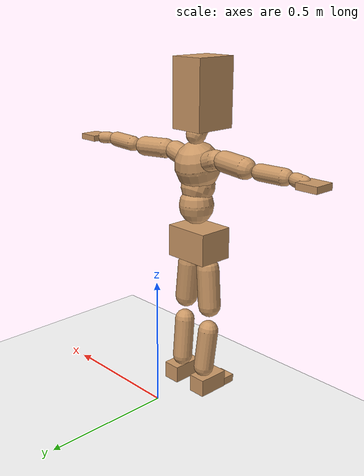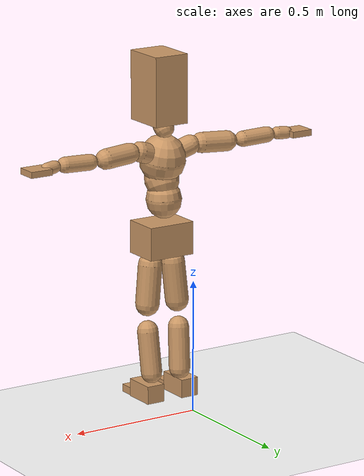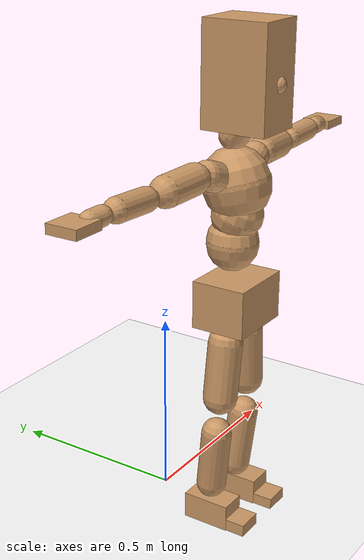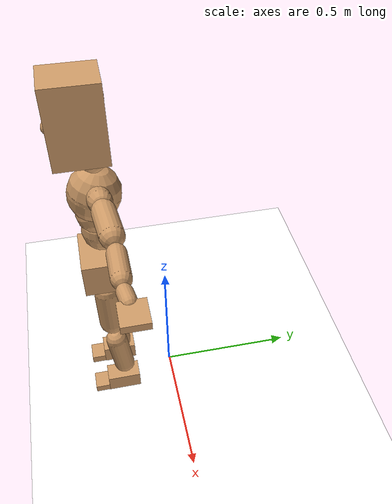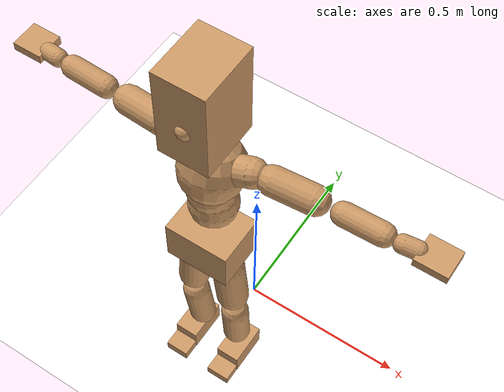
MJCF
<mujoco model="humanoid">
  <option integrator="implicitfast" />

  <visual>
    <global offwidth="1280" offheight="960" />
    <headlight active="1" ambient="0.34 0.34 0.34" diffuse="0.5 0.5 0.5" />
  </visual>

  <default>
    <joint damping="2" stiffness="2" armature="0.01" limited="true" solimplimit="0 .99 .01" />
    <geom condim="1" friction="0.7 0.005 0.0001" solimp=".99 .99 .003" solref="0.015 1" margin="0.001" rgba="0.8 0.6 .4 1" />
    <default class="smplcontact">
      <geom condim="3" friction="1. 0.005 0.0001" solref="0.015 1" solimp="0.98 0.98 0.001" priority="1" />
    </default>
    <default class="stiff_medium">
      <joint stiffness="10" />
    </default>
    <default class="stiff_medium_higher">
      <joint stiffness="50" />
    </default>
    <default class="stiff_high">
      <joint stiffness="100" />
    </default>
  </default>

  <asset>
    <texture type="skybox" builtin="gradient" rgb1="0.99 0.99 0.99" rgb2="0.608 0.828 0.892" width="100" />
    <texture builtin="flat" height="1278" mark="cross" markrgb="1 1 1" name="texgeom" random="0.01" rgb1="0.8 0.6 0.4" rgb2="0.8 0.6 0.4" type="cube" width="127" />
    <texture name="texplane" type="2d" builtin="checker" markrgb="1 1 1" rgb1="0.756 0.772 0.76" rgb2="0.6 0.6 0.6" width="100" height="100" />
    <material name="MatPlane" reflectance="0.5" texture="texplane" texrepeat="1 1" texuniform="true" />
    <material name="geom" texture="texgeom" texuniform="true" />
  </asset>

  <worldbody>
    <light name="tracking_light" pos="0 0 7" dir="0 0 -1" directional="true" cutoff="100" exponent="1" diffuse="1 1 1" specular="0.1 0.1 0.1" mode="trackcom" />
    <camera name="back" pos="0 3 2.4" xyaxes="-1 0 0 0 -1 2" mode="trackcom" />
    <camera name="side" pos="-3 0 2.4" xyaxes="0 -1 0 1 0 2" mode="trackcom" />
    <camera name="front_side" pos="-2.8 -2.8 0.8" xyaxes="0.5 -0.5 0 0.1 0.1 1" mode="trackcom" />
    <geom condim="3" name="floor" pos="0 0 0" rgba="1 1 1 1" size="100 100 .2" type="plane" material="MatPlane" />
    <body name="Pelvis" pos="-0.0018 -0.2233 0.628593" euler="90 0 0">
      <site name="Pelvis" size="0.01" />
      <freejoint name="Pelvis" />
      <geom type="box" pos="-0.0000 -0.0121 -0.0055" size="0.0928747 0.0627274 0.0721104" quat="1.0000 0.0000 0.0000 0.0000" density="3165.830099" name="Pelvis" />
      <body name="L_Hip" pos="0.0463913 -0.0610095 -0.004539">
        <joint name="L_Hip_x" type="hinge" pos="0 0 0" axis="1 0 0" stiffness="2.5073078125000006" range="-160.0 22.92" class="stiff_medium" damping="3.095008255525409" armature="0.001697983444680235"/>
        <joint name="L_Hip_y" type="hinge" pos="0 0 0" axis="0 1 0" stiffness="2.514269375" range="-70.0 70.0" class="stiff_medium" damping="2.1906007777887564" armature="0.0019085989016784267"/>
        <joint name="L_Hip_z" type="hinge" pos="0 0 0" axis="0 0 1" stiffness="2.5130628125" range="-28.65 90.0" class="stiff_medium" damping="2.0655130171487066" armature="0.0016976670868670352"/>
        <geom type="capsule" density="2040.816327" fromto="0.00460575 -0.0500625 -0.00060075 0.0182895 -0.200384 -0.002403" size="0.0453563" name="L_Hip" />
        <body name="L_Knee" pos="0.0228952 -0.250446 -0.00300375">
          <joint name="L_Knee_x" type="hinge" pos="0 0 0" axis="1 0 0" range="-5.16 171.89" damping="1.6768742189589954" armature="0.0017319120670888889" stiffness="0.5073704375"/>
          <joint name="L_Knee_y" type="hinge" pos="0 0 0" axis="0 1 0" range="-4.58 6.88" damping="1.771312928631785" armature="0.0019462083070684994" stiffness="0.5037920208333333"/>
          <joint name="L_Knee_z" type="hinge" pos="0 0 0" axis="0 0 1" range="-6.88 4.58" damping="1.6799370942987337" armature="0.0017303389779302755" stiffness="0.5096885416666667"/>
          <geom type="capsule" density="1234.567901" fromto="-0.00180225 -0.053133 -0.00580725 -0.00727575 -0.212532 -0.0233625" size="0.0398988" name="L_Knee" />
          <body name="L_Ankle" pos="-0.009078 -0.265665 -0.0291698">
            <joint name="L_Ankle_x" type="hinge" pos="0 0 0" axis="1 0 0" range="-45.84 45.84" class="stiff_medium" damping="1.3612267997467666" armature="0.001922296691147274" stiffness="2.6775529166666665"/>
            <joint name="L_Ankle_y" type="hinge" pos="0 0 0" axis="0 1 0" range="-74.48 22.92" class="stiff_medium" damping="0.6823204594866523" armature="0.0019319513322617243" stiffness="2.6775531249999993"/>
            <joint name="L_Ankle_z" type="hinge" pos="0 0 0" axis="0 0 1" range="-4.58 4.58" class="stiff_medium" damping="1.3867804349827606" armature="0.0019951466879225745" stiffness="2.677553020833333"/>
            <geom type="box" pos="0.0155528 -0.0159532 0.0161535" size="0.0356213 0.03422 0.0626875" quat="1.0000 0.0000 0.0000 0.0000" density="449.071558" name="L_Ankle" class="smplcontact" />
            <body name="L_Toe" pos="0.017622 -0.0372465 0.0796328">
              <joint name="L_Toe_x" type="hinge" pos="0 0 0" axis="1 0 0" range="-91.67 22.92" armature="0.0020317935367881036" damping="0.4664864868287728" stiffness="0.5355112083333333"/>
              <joint name="L_Toe_y" type="hinge" pos="0 0 0" axis="0 1 0" range="-4.58 4.58" armature="0.002076103238446938" damping="0.4715457347623182" stiffness="0.535511375"/>
              <joint name="L_Toe_z" type="hinge" pos="0 0 0" axis="0 0 1" range="-4.58 4.58" armature="0.0021656936762689954" damping="0.48161245546029763" stiffness="0.535511"/>
              <geom type="box" pos="-0.0020025 0.00367125 0.016554" size="0.0352525 0.01475 0.03658" quat="1.0000 0.0000 0.0000 0.0000" density="423.206892" name="L_Toe" class="smplcontact" />
            </body>
          </body>
        </body>
      </body>
      <body name="R_Hip" pos="-0.0451897 -0.0604087 -0.00287025">
        <joint name="R_Hip_x" type="hinge" pos="0 0 0" axis="1 0 0" stiffness="2.5073078125000006" range="-160.0 22.92" class="stiff_medium" damping="3.095008255525409" armature="0.001697983444680235"/>
        <joint name="R_Hip_y" type="hinge" pos="0 0 0" axis="0 1 0" stiffness="2.514269375" range="-70.0 70.0" class="stiff_medium" damping="2.1906007777887564" armature="0.0019085989016784267"/>
        <joint name="R_Hip_z" type="hinge" pos="0 0 0" axis="0 0 1" stiffness="2.5130628125" range="-90.0 28.65" class="stiff_medium" damping="2.0655130171487066" armature="0.0016976670868670352"/>
        <geom type="capsule" density="2040.816327" fromto="-0.00513975 -0.0510637 -0.0012015 -0.0204255 -0.204322 -0.00473925" size="0.0446925" name="R_Hip" />
        <body name="R_Knee" pos="-0.0255653 -0.255385 -0.00594075">
          <joint name="R_Knee_x" type="hinge" pos="0 0 0" axis="1 0 0" range="-5.16 171.89" damping="1.6768742189589954" armature="0.0017319120670888889" stiffness="0.5073704375"/>
          <joint name="R_Knee_y" type="hinge" pos="0 0 0" axis="0 1 0" range="-6.88 4.58" damping="1.771312928631785" armature="0.0019462083070684994" stiffness="0.5037920208333333"/>
          <joint name="R_Knee_z" type="hinge" pos="0 0 0" axis="0 0 1" range="-4.58 6.88" damping="1.6799370942987337" armature="0.0017303389779302755" stiffness="0.5096885416666667"/>
          <geom type="capsule" density="1234.567901" fromto="0.002136 -0.0531997 -0.00567375 0.0084105 -0.212732 -0.0225615" size="0.0398988" name="R_Knee" />
          <body name="R_Ankle" pos="0.0105465 -0.265932 -0.0282352">
            <joint name="R_Ankle_x" type="hinge" pos="0 0 0" axis="1 0 0" range="-45.84 45.84" class="stiff_medium" damping="1.3612267997467666" armature="0.001922296691147274" stiffness="2.6775529166666665"/>
            <joint name="R_Ankle_y" type="hinge" pos="0 0 0" axis="0 1 0" range="-22.92 74.48" class="stiff_medium" damping="0.6823204594866523" armature="0.0019319513322617243" stiffness="2.6775531249999993"/>
            <joint name="R_Ankle_z" type="hinge" pos="0 0 0" axis="0 0 1" range="-4.58 4.58" class="stiff_medium" damping="1.3867804349827606" armature="0.0019951466879225745" stiffness="2.677553020833333"/>
            <geom type="box" pos="-0.014151 -0.0116145 0.017088" size="0.0356213 0.0352525 0.0637937" quat="1.0000 0.0000 0.0000 0.0000" density="434.700981" name="R_Ankle" class="smplcontact" />
            <body name="R_Toe" pos="-0.0169545 -0.0321067 0.0823028">
              <joint name="R_Toe_x" type="hinge" pos="0 0 0" axis="1 0 0" range="-91.67 22.92" armature="0.0020317935367881036" damping="0.4664864868287728" stiffness="0.5355112083333333"/>
              <joint name="R_Toe_y" type="hinge" pos="0 0 0" axis="0 1 0" range="-4.58 4.58" armature="0.002076103238446938" damping="0.4715457347623182" stiffness="0.535511375"/>
              <joint name="R_Toe_z" type="hinge" pos="0 0 0" axis="0 0 1" range="-4.58 4.58" armature="0.0021656936762689954" damping="0.48161245546029763" stiffness="0.535511"/>
              <geom type="box" pos="0.0028035 0.00300375 0.0151523" size="0.0353263 0.01593 0.0363588" quat="1.0000 0.0000 0.0000 0.0000" density="407.384095" name="R_Toe" class="smplcontact" />
            </body>
          </body>
        </body>
      </body>
      <body name="Torso" pos="-0.001953 0.0851508 -0.020858">
        <joint name="Torso_x" type="hinge" pos="0 0 0" axis="1 0 0" range="-25.78 57.3" class="stiff_medium" damping="9.425403676046987" armature="0.006164027622417085" stiffness="6.40549688888889"/>
        <joint name="Torso_y" type="hinge" pos="0 0 0" axis="0 1 0" range="-57.3 57.3" class="stiff_high" damping="7.4972650395784175" armature="0.0021328896448388136" stiffness="65.88360444444443"/>
        <joint name="Torso_z" type="hinge" pos="0 0 0" axis="0 0 1" range="-34.38 34.38" class="stiff_high" damping="10.823327791569097" armature="0.004760312593855353" stiffness="61.521392857142864"/>
        <geom type="capsule" density="2040.816327" fromto="0.001953 0.047497 0.0003906 0.0023436 0.0580432 0.00046872" size="0.0668107" name="Torso" />
        <body name="Spine" pos="0.0042966 0.105618 0.00085932">
          <joint name="Spine_x" type="hinge" pos="0 0 0" axis="1 0 0" stiffness="6.802836304347824" range="-25.78 57.3" class="stiff_medium" damping="10.779023596530712" armature="0.007590778283680051"/>
          <joint name="Spine_y" type="hinge" pos="0 0 0" axis="0 1 0" stiffness="7.121635428571428" range="-57.3 57.3" class="stiff_high" damping="3.102953438719678" armature="0.0021124712459466804"/>
          <joint name="Spine_z" type="hinge" pos="0 0 0" axis="0 0 1" stiffness="14.672053" range="-34.38 34.38" class="stiff_high" damping="6.929920174505018" armature="0.004546038197113366"/>
          <geom type="capsule" density="2040.816327" fromto="0.00054684 0.0185926 0.00890568 0.00062496 0.0227329 0.0109368" size="0.0655944" name="Spine" />
          <body name="Chest" pos="0.0011718 0.0413255 0.0198425">
            <joint name="Chest_x" type="hinge" pos="0 0 0" axis="1 0 0" stiffness="7.8164763157894726" range="-25.78 57.3" class="stiff_medium" damping="12.143607926212308" armature="0.00838497823246513"/>
            <joint name="Chest_y" type="hinge" pos="0 0 0" axis="0 1 0" stiffness="6.433154999999999" range="-57.3 57.3" class="stiff_high" damping="2.923684279099009" armature="0.0020761415286926414"/>
            <joint name="Chest_z" type="hinge" pos="0 0 0" axis="0 0 1" stiffness="16.0417" range="-34.38 34.38" class="stiff_high" damping="7.083121007527559" armature="0.004343766143453747"/>
            <geom type="capsule" density="2040.816327" fromto="-0.00070308 0.0532778 -0.0135148 -0.0007812 0.065074 -0.0165614" size="0.0870538" name="Chest" />
            <body name="Neck" pos="-0.00218736 0.167099 -0.0335135">
              <joint name="Neck_x" type="hinge" pos="0 0 0" axis="1 0 0" range="-28.65 57.3" class="stiff_medium_higher" damping="15.259654823264032" armature="0.016147103626387205" stiffness="72.10490212765957"/>
              <joint name="Neck_y" type="hinge" pos="0 0 0" axis="0 1 0" range="-40.11 40.11" class="stiff_medium_higher" damping="15.656332261475278" armature="0.01690188581309562" stiffness="72.5128375"/>
              <joint name="Neck_z" type="hinge" pos="0 0 0" axis="0 0 1" range="-40.11 40.11" class="stiff_medium_higher" damping="15.467710613397816" armature="0.016166523927759326" stiffness="73.99552083333333"/>
              <geom type="capsule" density="1000" fromto="0.0007812 0.0101556 0.00804636 0.00320292 0.0406224 0.0321073" size="0.0378797" name="Neck" />
              <body name="Head" pos="0.00542776 0.067847 0.0535469">
                <joint name="Head_x" type="hinge" pos="0 0 0" axis="1 0 0" range="-28.65 57.3" class="stiff_medium_higher" damping="3.205914180403262" armature="0.017006301524891965" stiffness="75.54468645833335"/>
                <joint name="Head_y" type="hinge" pos="0 0 0" axis="0 1 0" range="-40.11 40.11" class="stiff_medium_higher" damping="3.334282796888083" armature="0.018395468692272758" stiffness="75.544703125"/>
                <joint name="Head_z" type="hinge" pos="0 0 0" axis="0 0 1" range="-40.11 40.11" class="stiff_medium_higher" damping="3.1994237992212864" armature="0.01693751589781389" stiffness="75.544671875"/>
                <geom type="box" pos="-0.00438396 0.0914369 -0.0121081" size="0.0685507 0.13054 0.0859712" quat="1.0000 0.0000 0.0000 0.0000" density="1018.069894" name="Head" />
                <geom type="capsule" name="nose" size="0.022624 0.011312" pos="0 0.073066 0.05219" quat="1 0 0 0" mass="0" contype="0" conaffinity="0" />
              </body>
            </body>
            <body name="L_Thorax" pos="0.0546636 0.0844233 -0.0236552">
              <joint name="L_Thorax_x" type="hinge" pos="0 0 0" axis="1 0 0" range="-10.89 4.58" class="stiff_medium_higher" damping="4.598038109708683" armature="0.001971069747610563" stiffness="13.407665104166666"/>
              <joint name="L_Thorax_y" type="hinge" pos="0 0 0" axis="0 1 0" range="-28.65 17.19" class="stiff_medium_higher" damping="4.473285537000241" armature="0.001868172266868552" stiffness="13.388944270833333"/>
              <joint name="L_Thorax_z" type="hinge" pos="0 0 0" axis="0 0 1" range="-31.51 40.11" class="stiff_medium_higher" damping="4.473229229447327" armature="0.0018680793092121365" stiffness="13.389273437499998"/>
              <geom type="capsule" density="1000" fromto="0.0126253 0.00423157 -0.00124866 0.0505014 0.0169263 -0.00492527" size="0.0384237" name="L_Thorax" />
              <body name="L_Shoulder" pos="0.0631267 0.0211578 -0.00617393">
                <joint name="L_Shoulder_x" type="hinge" pos="0 0 0" axis="1 0 0" range="-97.4 97.4" class="stiff_medium" damping="1.3938357583247387" armature="0.0020111857381274263" stiffness="2.683295625"/>
                <joint name="L_Shoulder_y" type="hinge" pos="0 0 0" axis="0 1 0" range="-108.86 80.21" class="stiff_medium" damping="1.3437669065147961" armature="0.0018717302202202002" stiffness="2.6797984375"/>
                <joint name="L_Shoulder_z" type="hinge" pos="0 0 0" axis="0 0 1" range="-97.4 85.94" class="stiff_medium" damping="1.3436319972100486" armature="0.0018716088211479392" stiffness="2.679434166666667"/>
                <geom type="capsule" density="1000" fromto="0.036003 -0.00180362 -0.00381535 0.144081 -0.00707574 -0.0152614" size="0.0381288" name="L_Shoulder" />
                <body name="L_Elbow" pos="0.180085 -0.00887936 -0.0190767">
                  <joint name="L_Elbow_x" type="hinge" pos="0 0 0" axis="1 0 0" range="-17.19 4.58" damping="1.182984563160133" armature="0.0020757371558446577" stiffness="0.5393563333333333"/>
                  <joint name="L_Elbow_y" type="hinge" pos="0 0 0" axis="0 1 0" range="-180.0 17.19" damping="1.1285332348406723" armature="0.0018890758077002563" stiffness="0.5393482916666665"/>
                  <joint name="L_Elbow_z" type="hinge" pos="0 0 0" axis="0 0 1" range="-100.84 4.58" damping="1.1284438897146754" armature="0.001888438608541754" stiffness="0.5394448541666665"/>
                  <geom type="capsule" density="1000" fromto="0.0345463 0.00124866 -0.00013874 0.138324 0.00499464 -0.00062433" size="0.0298688" name="L_Elbow" />
                  <body name="L_Wrist" pos="0.17287 0.0062433 -0.00083244">
                    <joint name="L_Wrist_x" type="hinge" pos="0 0 0" axis="1 0 0" range="-180.0 22.92" armature="0.0020956853059005023" damping="0.4803653148676116" stiffness="0.5505378958333333"/>
                    <joint name="L_Wrist_y" type="hinge" pos="0 0 0" axis="0 1 0" range="-17.19 17.19" armature="0.0019489730944901701" damping="0.4628789672464501" stiffness="0.5496662291666666"/>
                    <joint name="L_Wrist_z" type="hinge" pos="0 0 0" axis="0 0 1" range="-22.92 22.92" armature="0.0019407629880618044" damping="0.4620250525387819" stiffness="0.5499567708333333"/>
                    <geom type="capsule" density="1000" fromto="0.0116542 -0.00110992 -0.0020811 0.0466166 -0.00450905 -0.0083244" size="0.0234525" name="L_Wrist" class="smplcontact" />
                    <body name="L_Hand" pos="0.0582708 -0.00568834 -0.0103361">
                      <joint name="L_Hand_x" type="hinge" pos="0 0 0" axis="1 0 0" range="-17.19 17.19" armature="0.002170823431088044" damping="0.49155406769526067" stiffness="0.556529375"/>
                      <joint name="L_Hand_y" type="hinge" pos="0 0 0" axis="0 1 0" range="-51.57 51.57" armature="0.0020492931837969844" damping="0.477596425172859" stiffness="0.5565293124999999"/>
                      <joint name="L_Hand_z" type="hinge" pos="0 0 0" axis="0 0 1" range="-91.67 91.67" armature="0.002016897616352589" damping="0.47380629238774147" stiffness="0.556529"/>
                      <geom type="box" pos="0.0341994 0.0006937 -0.00402346" size="0.0431438 0.0116525 0.0396775" quat="1.0000 0.0000 0.0000 0.0000" density="400.552564" name="L_Hand" class="smplcontact" />
                    </body>
                  </body>
                </body>
              </body>
            </body>
            <body name="R_Thorax" pos="-0.0567447 0.0824116 -0.0267768">
              <joint name="R_Thorax_x" type="hinge" pos="0 0 0" axis="1 0 0" range="-10.89 4.58" class="stiff_medium_higher" damping="4.598038109708683" armature="0.001971069747610563" stiffness="13.407665104166666"/>
              <joint name="R_Thorax_y" type="hinge" pos="0 0 0" axis="0 1 0" range="-17.19 28.65" class="stiff_medium_higher" damping="4.473285537000241" armature="0.001868172266868552" stiffness="13.388944270833333"/>
              <joint name="R_Thorax_z" type="hinge" pos="0 0 0" axis="0 0 1" range="-40.11 31.51" class="stiff_medium_higher" damping="4.473229229447327" armature="0.0018680793092121365" stiffness="13.389273437499998"/>
              <geom type="capsule" density="1000" fromto="-0.013319 0.00450905 -0.00124866 -0.0532762 0.0180362 -0.00506401" size="0.0376863" name="R_Thorax" />
              <body name="R_Shoulder" pos="-0.0665952 0.0226146 -0.00631267">
                <joint name="R_Shoulder_x" type="hinge" pos="0 0 0" axis="1 0 0" range="-97.4 97.4" class="stiff_medium" damping="1.3938357583247387" armature="0.0020111857381274263" stiffness="2.683295625"/>
                <joint name="R_Shoulder_y" type="hinge" pos="0 0 0" axis="0 1 0" range="-80.21 108.86" class="stiff_medium" damping="1.3437669065147961" armature="0.0018717302202202002" stiffness="2.6797984375"/>
                <joint name="R_Shoulder_z" type="hinge" pos="0 0 0" axis="0 0 1" range="-85.94 97.4" class="stiff_medium" damping="1.3436319972100486" armature="0.0018716088211479392" stiffness="2.679434166666667"/>
                <geom type="capsule" density="1000" fromto="-0.0351706 -0.00187299 -0.00298291 -0.140821 -0.00742259 -0.0118623" size="0.0391613" name="R_Shoulder" />
                <body name="R_Elbow" pos="-0.175992 -0.00922621 -0.0148452">
                  <joint name="R_Elbow_x" type="hinge" pos="0 0 0" axis="1 0 0" range="-17.19 4.58" damping="1.182984563160133" armature="0.0020757371558446577" stiffness="0.5393563333333333"/>
                  <joint name="R_Elbow_y" type="hinge" pos="0 0 0" axis="0 1 0" range="-17.19 180.0" damping="1.1285332348406723" armature="0.0018890758077002563" stiffness="0.5393482916666665"/>
                  <joint name="R_Elbow_z" type="hinge" pos="0 0 0" axis="0 0 1" range="-4.58 100.84" damping="1.1284438897146754" armature="0.001888438608541754" stiffness="0.5394448541666665"/>
                  <geom type="capsule" density="1000" fromto="-0.0354481 0.00110992 -0.00076307 -0.141654 0.00430094 -0.00305228" size="0.03009" name="R_Elbow" />
                  <body name="R_Wrist" pos="-0.177102 0.00541086 -0.00388472">
                    <joint name="R_Wrist_x" type="hinge" pos="0 0 0" axis="1 0 0" range="-180.0 22.92" armature="0.0020956853059005023" damping="0.4803653148676116" stiffness="0.5505378958333333"/>
                    <joint name="R_Wrist_y" type="hinge" pos="0 0 0" axis="0 1 0" range="-17.19 17.19" armature="0.0019489730944901701" damping="0.4628789672464501" stiffness="0.5496662291666666"/>
                    <joint name="R_Wrist_z" type="hinge" pos="0 0 0" axis="0 0 1" range="-22.92 22.92" armature="0.0019407629880618044" damping="0.4620250525387819" stiffness="0.5499567708333333"/>
                    <geom type="capsule" density="1000" fromto="-0.0117235 -0.00083244 -0.00145677 -0.0469635 -0.00339913 -0.00575771" size="0.0240425" name="R_Wrist" class="smplcontact" />
                    <body name="R_Hand" pos="-0.058687 -0.00423157 -0.00714511">
                      <joint name="R_Hand_x" type="hinge" pos="0 0 0" axis="1 0 0" range="-17.19 17.19" armature="0.002170823431088044" damping="0.49155406769526067" stiffness="0.556529375"/>
                      <joint name="R_Hand_y" type="hinge" pos="0 0 0" axis="0 1 0" range="-51.57 51.57" armature="0.0020492931837969844" damping="0.477596425172859" stiffness="0.5565293124999999"/>
                      <joint name="R_Hand_z" type="hinge" pos="0 0 0" axis="0 0 1" range="-91.67 91.67" armature="0.002016897616352589" damping="0.47380629238774147" stiffness="0.556529"/>
                      <geom type="box" pos="-0.0320489 -0.00062433 -0.00548023" size="0.0419638 0.012095 0.0402675" quat="1.0000 0.0000 0.0000 0.0000" density="403.679611" name="R_Hand" class="smplcontact" />
                    </body>
                  </body>
                </body>
              </body>
            </body>
          </body>
        </body>
      </body>
    </body>
  </worldbody>
  <actuator>
    <general name="L_Hip_x" joint="L_Hip_x" biastype="affine" gainprm="72.04249144773425" biasprm="-53.98854541687847 -45.13154062500001 -0.41266776740338784" ctrllimited="true" ctrlrange="-1 1" forcerange="-90.26308125000001 90.26308125000001" />
    <general name="L_Hip_y" joint="L_Hip_y" biastype="affine" gainprm="55.2916713835206" biasprm="0.0 -45.25684875 -0.43812015555775125" ctrllimited="true" ctrlrange="-1 1" forcerange="-90.5136975 90.5136975" />
    <general name="L_Hip_z" joint="L_Hip_z" biastype="affine" gainprm="46.83720419084944" biasprm="24.217972836987887 -45.235130625 -0.4131026034297413" ctrllimited="true" ctrlrange="-1 1" forcerange="-90.47026125 90.47026125" />
    <general name="L_Knee_x" joint="L_Knee_x" biastype="affine" gainprm="70.55226672060353" biasprm="66.43987252372902 -45.663339375 -0.41921855473974884" ctrllimited="true" ctrlrange="-1 1" forcerange="-91.32667875 91.32667875" />
    <general name="L_Knee_y" joint="L_Knee_y" biastype="affine" gainprm="4.534462177697201" biasprm="0.9100578541626146 -45.341281875 -0.44282823215794626" ctrllimited="true" ctrlrange="-1 1" forcerange="-90.68256375 90.68256375" />
    <general name="L_Knee_z" joint="L_Knee_z" biastype="affine" gainprm="4.587534774310634" biasprm="-0.9207094224183647 -45.87196875 -0.41998427357468343" ctrllimited="true" ctrlrange="-1 1" forcerange="-91.7439375 91.7439375" />
    <general name="L_Ankle_x" joint="L_Ankle_x" biastype="affine" gainprm="19.279801072394445" biasprm="0.0 -24.097976250000002 -0.4537422665822555" ctrllimited="true" ctrlrange="-1 1" forcerange="-48.195952500000004 48.195952500000004" />
    <general name="L_Ankle_y" joint="L_Ankle_y" biastype="affine" gainprm="20.48268728797972" biasprm="-10.842786001727251 -24.097978124999997 -0.4548803063244349" ctrllimited="true" ctrlrange="-1 1" forcerange="-48.195956249999995 48.195956249999995" />
    <general name="L_Ankle_z" joint="L_Ankle_z" biastype="affine" gainprm="1.926297826064999" biasprm="0.0 -24.0979771875 -0.46226014499425355" ctrllimited="true" ctrlrange="-1 1" forcerange="-48.195954375 48.195954375" />
    <general name="L_Toe_x" joint="L_Toe_x" biastype="affine" gainprm="19.278141215973804" biasprm="-11.566211786353076 -19.2784035 -0.18659459473150913" ctrllimited="true" ctrlrange="-1 1" forcerange="-38.556807 38.556807" />
    <general name="L_Toe_y" joint="L_Toe_y" biastype="affine" gainprm="1.5410404790782122" biasprm="0.0 -19.278409500000002 -0.1886182939049273" ctrllimited="true" ctrlrange="-1 1" forcerange="-38.556819000000004 38.556819000000004" />
    <general name="L_Toe_z" joint="L_Toe_z" biastype="affine" gainprm="1.5410393999411356" biasprm="0.0 -19.278395999999997 -0.19264498218411907" ctrllimited="true" ctrlrange="-1 1" forcerange="-38.556791999999994 38.556791999999994" />
    <general name="R_Hip_x" joint="R_Hip_x" biastype="affine" gainprm="72.04249144773425" biasprm="-53.98854541687847 -45.13154062500001 -0.41266776740338784" ctrllimited="true" ctrlrange="-1 1" forcerange="-90.26308125000001 90.26308125000001" />
    <general name="R_Hip_y" joint="R_Hip_y" biastype="affine" gainprm="55.2916713835206" biasprm="0.0 -45.25684875 -0.43812015555775125" ctrllimited="true" ctrlrange="-1 1" forcerange="-90.5136975 90.5136975" />
    <general name="R_Hip_z" joint="R_Hip_z" biastype="affine" gainprm="46.83720419084944" biasprm="-24.217972836987887 -45.235130625 -0.4131026034297413" ctrllimited="true" ctrlrange="-1 1" forcerange="-90.47026125 90.47026125" />
    <general name="R_Knee_x" joint="R_Knee_x" biastype="affine" gainprm="70.55226672060353" biasprm="66.43987252372902 -45.663339375 -0.41921855473974884" ctrllimited="true" ctrlrange="-1 1" forcerange="-91.32667875 91.32667875" />
    <general name="R_Knee_y" joint="R_Knee_y" biastype="affine" gainprm="4.534462177697201" biasprm="-0.9100578541626146 -45.341281875 -0.44282823215794626" ctrllimited="true" ctrlrange="-1 1" forcerange="-90.68256375 90.68256375" />
    <general name="R_Knee_z" joint="R_Knee_z" biastype="affine" gainprm="4.587534774310634" biasprm="0.9207094224183647 -45.87196875 -0.41998427357468343" ctrllimited="true" ctrlrange="-1 1" forcerange="-91.7439375 91.7439375" />
    <general name="R_Ankle_x" joint="R_Ankle_x" biastype="affine" gainprm="19.279801072394445" biasprm="0.0 -24.097976250000002 -0.4537422665822555" ctrllimited="true" ctrlrange="-1 1" forcerange="-48.195952500000004 48.195952500000004" />
    <general name="R_Ankle_y" joint="R_Ankle_y" biastype="affine" gainprm="20.48268728797972" biasprm="10.842786001727251 -24.097978124999997 -0.4548803063244349" ctrllimited="true" ctrlrange="-1 1" forcerange="-48.195956249999995 48.195956249999995" />
    <general name="R_Ankle_z" joint="R_Ankle_z" biastype="affine" gainprm="1.926297826064999" biasprm="0.0 -24.0979771875 -0.46226014499425355" ctrllimited="true" ctrlrange="-1 1" forcerange="-48.195954375 48.195954375" />
    <general name="R_Toe_x" joint="R_Toe_x" biastype="affine" gainprm="19.278141215973804" biasprm="-11.566211786353076 -19.2784035 -0.18659459473150913" ctrllimited="true" ctrlrange="-1 1" forcerange="-38.556807 38.556807" />
    <general name="R_Toe_y" joint="R_Toe_y" biastype="affine" gainprm="1.5410404790782122" biasprm="0.0 -19.278409500000002 -0.1886182939049273" ctrllimited="true" ctrlrange="-1 1" forcerange="-38.556819000000004 38.556819000000004" />
    <general name="R_Toe_z" joint="R_Toe_z" biastype="affine" gainprm="1.5410393999411356" biasprm="0.0 -19.278395999999997 -0.19264498218411907" ctrllimited="true" ctrlrange="-1 1" forcerange="-38.556791999999994 38.556791999999994" />
    <general name="Torso_x" joint="Torso_x" biastype="affine" gainprm="111.45714802411493" biasprm="42.28610141694874 -153.73192533333335 -2.5134409802791966" ctrllimited="true" ctrlrange="-1 1" forcerange="-230.59788800000004 230.59788800000004" />
    <general name="Torso_y" joint="Torso_y" biastype="affine" gainprm="158.1322980540174" biasprm="0.0 -158.12065066666665 -1.4994530079156836" ctrllimited="true" ctrlrange="-1 1" forcerange="-237.18097599999996 237.18097599999996" />
    <general name="Torso_z" joint="Torso_z" biastype="affine" gainprm="88.59733143641957" biasprm="0.0 -147.65134285714288 -2.1646655583138195" ctrllimited="true" ctrlrange="-1 1" forcerange="-221.47701428571432 221.47701428571432" />
    <general name="Spine_x" joint="Spine_x" biastype="affine" gainprm="118.37094703343796" biasprm="44.909150824433844 -163.26807130434779 -2.8744062924081897" ctrllimited="true" ctrlrange="-1 1" forcerange="-244.9021069565217 244.9021069565217" />
    <general name="Spine_y" joint="Spine_y" biastype="affine" gainprm="170.93184043573822" biasprm="0.0 -170.91925028571427 -1.551476719359839" ctrllimited="true" ctrlrange="-1 1" forcerange="-256.3788754285714 256.3788754285714" />
    <general name="Spine_z" joint="Spine_z" biastype="affine" gainprm="105.64656309978118" biasprm="0.0 -176.064636 -2.3099733915016727" ctrllimited="true" ctrlrange="-1 1" forcerange="-264.096954 264.096954" />
    <general name="Chest_x" joint="Chest_x" biastype="affine" gainprm="136.00852094193368" biasprm="51.60072917777743 -187.59543157894734 -3.238295446989949" ctrllimited="true" ctrlrange="-1 1" forcerange="-281.393147368421 281.393147368421" />
    <general name="Chest_y" joint="Chest_y" biastype="affine" gainprm="154.40709300376994" biasprm="0.0 -154.39571999999998 -1.4618421395495045" ctrllimited="true" ctrlrange="-1 1" forcerange="-231.59357999999997 231.59357999999997" />
    <general name="Chest_z" joint="Chest_z" biastype="affine" gainprm="115.50874790854147" biasprm="0.0 -192.50039999999998 -2.3610403358425196" ctrllimited="true" ctrlrange="-1 1" forcerange="-288.75059999999996 288.75059999999996" />
    <general name="Neck_x" joint="Neck_x" biastype="affine" gainprm="38.93951527659421" biasprm="12.979838425531403 -51.91552953191489 -1.2207723858611228" ctrllimited="true" ctrlrange="-1 1" forcerange="-103.83105906382978 103.83105906382978" />
    <general name="Neck_y" joint="Neck_y" biastype="affine" gainprm="36.549162163887694" biasprm="0.0 -52.209243 -1.2525065809180225" ctrllimited="true" ctrlrange="-1 1" forcerange="-104.418486 104.418486" />
    <general name="Neck_z" joint="Neck_z" biastype="affine" gainprm="37.296489609013435" biasprm="0.0 -53.276774999999994 -1.2374168490718254" ctrllimited="true" ctrlrange="-1 1" forcerange="-106.55354999999999 106.55354999999999" />
    <general name="Head_x" joint="Head_x" biastype="affine" gainprm="27.198090426655003" biasprm="9.066030142218334 -36.261449500000005 -1.2823656721613048" ctrllimited="true" ctrlrange="-1 1" forcerange="-72.52289900000001 72.52289900000001" />
    <general name="Head_y" joint="Head_y" biastype="affine" gainprm="25.384889998623837" biasprm="0.0 -36.2614575 -1.3337131187552334" ctrllimited="true" ctrlrange="-1 1" forcerange="-72.522915 72.522915" />
    <general name="Head_z" joint="Head_z" biastype="affine" gainprm="25.38487949785039" biasprm="0.0 -36.2614425 -1.2797695196885146" ctrllimited="true" ctrlrange="-1 1" forcerange="-72.522885 72.522885" />
    <general name="L_Thorax_x" joint="L_Thorax_x" biastype="affine" gainprm="4.344122675509087" biasprm="-1.7719078269206436 -32.17839625 -0.3678430487766946" ctrllimited="true" ctrlrange="-1 1" forcerange="-64.3567925 64.3567925" />
    <general name="L_Thorax_y" joint="L_Thorax_y" biastype="affine" gainprm="12.854333298351154" biasprm="-3.2135833245877885 -32.13346625 -0.3578628429600193" ctrllimited="true" ctrlrange="-1 1" forcerange="-64.2669325 64.2669325" />
    <general name="L_Thorax_z" joint="L_Thorax_z" biastype="affine" gainprm="20.083987443608386" biasprm="2.4116488692408837 -32.13425625 -0.3578583383557862" ctrllimited="true" ctrlrange="-1 1" forcerange="-64.2685125 64.2685125" />
    <general name="L_Shoulder_x" joint="L_Shoulder_x" biastype="affine" gainprm="21.895057214703957" biasprm="0.0 -12.879819000000001 -0.3716895355532637" ctrllimited="true" ctrlrange="-1 1" forcerange="-25.759638000000002 25.759638000000002" />
    <general name="L_Shoulder_y" joint="L_Shoulder_y" biastype="affine" gainprm="21.223321991977606" biasprm="-3.215995002222237 -12.8630325 -0.35833784173727895" ctrllimited="true" ctrlrange="-1 1" forcerange="-25.726065 25.726065" />
    <general name="L_Shoulder_z" joint="L_Shoulder_z" biastype="affine" gainprm="20.577325490628866" biasprm="-1.286223138009203 -12.861284 -0.3583018659226796" ctrllimited="true" ctrlrange="-1 1" forcerange="-25.722568 25.722568" />
    <general name="L_Elbow_x" joint="L_Elbow_x" biastype="affine" gainprm="3.6887912962549367" biasprm="-2.1366861849230485 -19.416828 -0.1892775301056213" ctrllimited="true" ctrlrange="-1 1" forcerange="-38.833656 38.833656" />
    <general name="L_Elbow_y" joint="L_Elbow_y" biastype="affine" gainprm="33.412122667261926" biasprm="-27.58673204248144 -19.416538499999994 -0.18056531757450756" ctrllimited="true" ctrlrange="-1 1" forcerange="-38.83307699999999 38.83307699999999" />
    <general name="L_Elbow_z" joint="L_Elbow_z" biastype="affine" gainprm="17.865695975717983" biasprm="-16.313336128083982 -19.420014749999996 -0.18055102235434806" ctrllimited="true" ctrlrange="-1 1" forcerange="-38.84002949999999 38.84002949999999" />
    <general name="L_Wrist_x" joint="L_Wrist_x" biastype="affine" gainprm="5.849391566284152" biasprm="-4.528003288152545 -3.303227375 -0.19214612594704464" ctrllimited="true" ctrlrange="-1 1" forcerange="-6.60645475 6.60645475" />
    <general name="L_Wrist_y" joint="L_Wrist_y" biastype="affine" gainprm="0.9894720930239794" biasprm="0.0 -3.2979973749999996 -0.18515158689858005" ctrllimited="true" ctrlrange="-1 1" forcerange="-6.595994749999999 6.595994749999999" />
    <general name="L_Wrist_z" joint="L_Wrist_z" biastype="affine" gainprm="1.3199934753960616" biasprm="0.0 -3.2997406249999996 -0.18481002101551278" ctrllimited="true" ctrlrange="-1 1" forcerange="-6.599481249999999 6.599481249999999" />
    <general name="L_Hand_x" joint="L_Hand_x" biastype="affine" gainprm="1.0018266655119648" biasprm="0.0 -3.33917625 -0.19662162707810427" ctrllimited="true" ctrlrange="-1 1" forcerange="-6.6783525 6.6783525" />
    <general name="L_Hand_y" joint="L_Hand_y" biastype="affine" gainprm="3.0054796590110326" biasprm="0.0 -3.3391758749999996 -0.1910385700691436" ctrllimited="true" ctrlrange="-1 1" forcerange="-6.678351749999999 6.678351749999999" />
    <general name="L_Hand_z" joint="L_Hand_z" biastype="affine" gainprm="5.342489153325994" biasprm="0.0 -3.3391740000000003 -0.1895225169550966" ctrllimited="true" ctrlrange="-1 1" forcerange="-6.678348000000001 6.678348000000001" />
    <general name="R_Thorax_x" joint="R_Thorax_x" biastype="affine" gainprm="4.344122675509087" biasprm="-1.7719078269206436 -32.17839625 -0.3678430487766946" ctrllimited="true" ctrlrange="-1 1" forcerange="-64.3567925 64.3567925" />
    <general name="R_Thorax_y" joint="R_Thorax_y" biastype="affine" gainprm="12.854333298351154" biasprm="3.2135833245877867 -32.13346625 -0.3578628429600193" ctrllimited="true" ctrlrange="-1 1" forcerange="-64.2669325 64.2669325" />
    <general name="R_Thorax_z" joint="R_Thorax_z" biastype="affine" gainprm="20.083987443608386" biasprm="-2.4116488692408837 -32.13425625 -0.3578583383557862" ctrllimited="true" ctrlrange="-1 1" forcerange="-64.2685125 64.2685125" />
    <general name="R_Shoulder_x" joint="R_Shoulder_x" biastype="affine" gainprm="21.895057214703957" biasprm="0.0 -12.879819000000001 -0.3716895355532637" ctrllimited="true" ctrlrange="-1 1" forcerange="-25.759638000000002 25.759638000000002" />
    <general name="R_Shoulder_y" joint="R_Shoulder_y" biastype="affine" gainprm="21.223321991977606" biasprm="3.215995002222237 -12.8630325 -0.35833784173727895" ctrllimited="true" ctrlrange="-1 1" forcerange="-25.726065 25.726065" />
    <general name="R_Shoulder_z" joint="R_Shoulder_z" biastype="affine" gainprm="20.577325490628866" biasprm="1.2862231380092002 -12.861284 -0.3583018659226796" ctrllimited="true" ctrlrange="-1 1" forcerange="-25.722568 25.722568" />
    <general name="R_Elbow_x" joint="R_Elbow_x" biastype="affine" gainprm="3.6887912962549367" biasprm="-2.1366861849230485 -19.416828 -0.1892775301056213" ctrllimited="true" ctrlrange="-1 1" forcerange="-38.833656 38.833656" />
    <general name="R_Elbow_y" joint="R_Elbow_y" biastype="affine" gainprm="33.412122667261926" biasprm="27.58673204248144 -19.416538499999994 -0.18056531757450756" ctrllimited="true" ctrlrange="-1 1" forcerange="-38.83307699999999 38.83307699999999" />
    <general name="R_Elbow_z" joint="R_Elbow_z" biastype="affine" gainprm="17.865695975717983" biasprm="16.31333612808398 -19.420014749999996 -0.18055102235434806" ctrllimited="true" ctrlrange="-1 1" forcerange="-38.84002949999999 38.84002949999999" />
    <general name="R_Wrist_x" joint="R_Wrist_x" biastype="affine" gainprm="5.849391566284152" biasprm="-4.528003288152545 -3.303227375 -0.19214612594704464" ctrllimited="true" ctrlrange="-1 1" forcerange="-6.60645475 6.60645475" />
    <general name="R_Wrist_y" joint="R_Wrist_y" biastype="affine" gainprm="0.9894720930239794" biasprm="0.0 -3.2979973749999996 -0.18515158689858005" ctrllimited="true" ctrlrange="-1 1" forcerange="-6.595994749999999 6.595994749999999" />
    <general name="R_Wrist_z" joint="R_Wrist_z" biastype="affine" gainprm="1.3199934753960616" biasprm="0.0 -3.2997406249999996 -0.18481002101551278" ctrllimited="true" ctrlrange="-1 1" forcerange="-6.599481249999999 6.599481249999999" />
    <general name="R_Hand_x" joint="R_Hand_x" biastype="affine" gainprm="1.0018266655119648" biasprm="0.0 -3.33917625 -0.19662162707810427" ctrllimited="true" ctrlrange="-1 1" forcerange="-6.6783525 6.6783525" />
    <general name="R_Hand_y" joint="R_Hand_y" biastype="affine" gainprm="3.0054796590110326" biasprm="0.0 -3.3391758749999996 -0.1910385700691436" ctrllimited="true" ctrlrange="-1 1" forcerange="-6.678351749999999 6.678351749999999" />
    <general name="R_Hand_z" joint="R_Hand_z" biastype="affine" gainprm="5.342489153325994" biasprm="0.0 -3.3391740000000003 -0.1895225169550966" ctrllimited="true" ctrlrange="-1 1" forcerange="-6.678348000000001 6.678348000000001" />
  </actuator>
  <contact>
    <exclude body1="Torso" body2="Chest" />
    <exclude body1="Head" body2="Chest" />
    <exclude body1="R_Knee" body2="R_Toe" />
    <exclude body1="R_Knee" body2="L_Ankle" />
    <exclude body1="R_Knee" body2="L_Toe" />
    <exclude body1="L_Knee" body2="L_Toe" />
    <exclude body1="L_Knee" body2="R_Ankle" />
    <exclude body1="L_Knee" body2="R_Toe" />
    <exclude body1="L_Shoulder" body2="Chest" />
    <exclude body1="R_Shoulder" body2="Chest" />
  </contact>
  <sensor>
    <framelinvel name="sensor_Pelvis_framelinvel" objtype="xbody" objname="Pelvis" />
    <framelinvel name="sensor_L_Hip_framelinvel" objtype="xbody" objname="L_Hip" />
    <framelinvel name="sensor_L_Knee_framelinvel" objtype="xbody" objname="L_Knee" />
    <framelinvel name="sensor_L_Ankle_framelinvel" objtype="xbody" objname="L_Ankle" />
    <framelinvel name="sensor_L_Toe_framelinvel" objtype="xbody" objname="L_Toe" />
    <framelinvel name="sensor_R_Hip_framelinvel" objtype="xbody" objname="R_Hip" />
    <framelinvel name="sensor_R_Knee_framelinvel" objtype="xbody" objname="R_Knee" />
    <framelinvel name="sensor_R_Ankle_framelinvel" objtype="xbody" objname="R_Ankle" />
    <framelinvel name="sensor_R_Toe_framelinvel" objtype="xbody" objname="R_Toe" />
    <framelinvel name="sensor_Torso_framelinvel" objtype="xbody" objname="Torso" />
    <framelinvel name="sensor_Spine_framelinvel" objtype="xbody" objname="Spine" />
    <framelinvel name="sensor_Chest_framelinvel" objtype="xbody" objname="Chest" />
    <framelinvel name="sensor_Neck_framelinvel" objtype="xbody" objname="Neck" />
    <framelinvel name="sensor_Head_framelinvel" objtype="xbody" objname="Head" />
    <framelinvel name="sensor_L_Thorax_framelinvel" objtype="xbody" objname="L_Thorax" />
    <framelinvel name="sensor_L_Shoulder_framelinvel" objtype="xbody" objname="L_Shoulder" />
    <framelinvel name="sensor_L_Elbow_framelinvel" objtype="xbody" objname="L_Elbow" />
    <framelinvel name="sensor_L_Wrist_framelinvel" objtype="xbody" objname="L_Wrist" />
    <framelinvel name="sensor_L_Hand_framelinvel" objtype="xbody" objname="L_Hand" />
    <framelinvel name="sensor_R_Thorax_framelinvel" objtype="xbody" objname="R_Thorax" />
    <framelinvel name="sensor_R_Shoulder_framelinvel" objtype="xbody" objname="R_Shoulder" />
    <framelinvel name="sensor_R_Elbow_framelinvel" objtype="xbody" objname="R_Elbow" />
    <framelinvel name="sensor_R_Wrist_framelinvel" objtype="xbody" objname="R_Wrist" />
    <framelinvel name="sensor_R_Hand_framelinvel" objtype="xbody" objname="R_Hand" />
    <frameangvel name="sensor_Pelvis_frameangvel" objtype="xbody" objname="Pelvis" />
    <frameangvel name="sensor_L_Hip_frameangvel" objtype="xbody" objname="L_Hip" />
    <frameangvel name="sensor_L_Knee_frameangvel" objtype="xbody" objname="L_Knee" />
    <frameangvel name="sensor_L_Ankle_frameangvel" objtype="xbody" objname="L_Ankle" />
    <frameangvel name="sensor_L_Toe_frameangvel" objtype="xbody" objname="L_Toe" />
    <frameangvel name="sensor_R_Hip_frameangvel" objtype="xbody" objname="R_Hip" />
    <frameangvel name="sensor_R_Knee_frameangvel" objtype="xbody" objname="R_Knee" />
    <frameangvel name="sensor_R_Ankle_frameangvel" objtype="xbody" objname="R_Ankle" />
    <frameangvel name="sensor_R_Toe_frameangvel" objtype="xbody" objname="R_Toe" />
    <frameangvel name="sensor_Torso_frameangvel" objtype="xbody" objname="Torso" />
    <frameangvel name="sensor_Spine_frameangvel" objtype="xbody" objname="Spine" />
    <frameangvel name="sensor_Chest_frameangvel" objtype="xbody" objname="Chest" />
    <frameangvel name="sensor_Neck_frameangvel" objtype="xbody" objname="Neck" />
    <frameangvel name="sensor_Head_frameangvel" objtype="xbody" objname="Head" />
    <frameangvel name="sensor_L_Thorax_frameangvel" objtype="xbody" objname="L_Thorax" />
    <frameangvel name="sensor_L_Shoulder_frameangvel" objtype="xbody" objname="L_Shoulder" />
    <frameangvel name="sensor_L_Elbow_frameangvel" objtype="xbody" objname="L_Elbow" />
    <frameangvel name="sensor_L_Wrist_frameangvel" objtype="xbody" objname="L_Wrist" />
    <frameangvel name="sensor_L_Hand_frameangvel" objtype="xbody" objname="L_Hand" />
    <frameangvel name="sensor_R_Thorax_frameangvel" objtype="xbody" objname="R_Thorax" />
    <frameangvel name="sensor_R_Shoulder_frameangvel" objtype="xbody" objname="R_Shoulder" />
    <frameangvel name="sensor_R_Elbow_frameangvel" objtype="xbody" objname="R_Elbow" />
    <frameangvel name="sensor_R_Wrist_frameangvel" objtype="xbody" objname="R_Wrist" />
    <frameangvel name="sensor_R_Hand_frameangvel" objtype="xbody" objname="R_Hand" />
    <subtreelinvel name="Chest_subtreelinvel" body="Chest" />
    <gyro name="Pelvis_gyro" site="Pelvis" />
  </sensor>
</mujoco>
